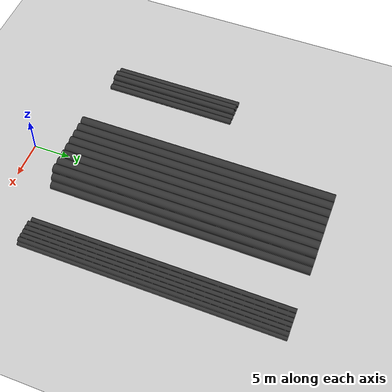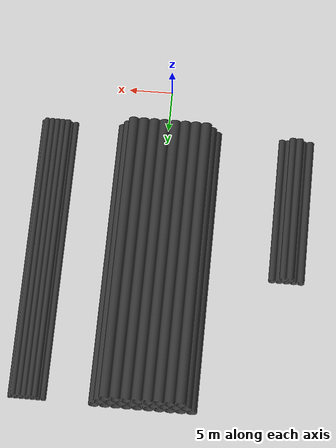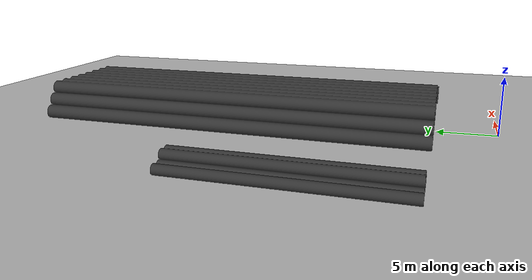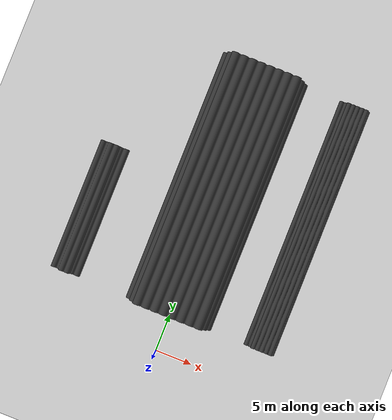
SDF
<sdf version="1.7">
 <world name="default">
  <light name="sun" type="directional">
   <pose>0 0 10 0 -0 0</pose>
   <diffuse>0.8 0.8 0.8 1</diffuse>
   <specular>0.2 0.2 0.2 1</specular>
   <attenuation>
    <range>1000</range>
    <constant>0.9</constant>
    <linear>0.01</linear>
    <quadratic>0.001</quadratic>
   </attenuation>
   <direction>-0.5 0.1 -0.9</direction>
   <spot><inner_angle>0</inner_angle><outer_angle>0</outer_angle><falloff>0</falloff></spot>
  </light>
  <model name="ground_plane">
   <static>1</static>
   <link name="link">
    <collision name="collision">
     <geometry><plane><normal>0 0 1</normal><size>100 100</size></plane></geometry>
     <surface>
      <contact><collide_bitmask>65535</collide_bitmask></contact>
      <friction><ode><mu>100</mu><mu2>50</mu2></ode></friction>
     </surface>
    </collision>
    <visual name="visual">
     <cast_shadows>0</cast_shadows>
     <geometry><plane><normal>0 0 1</normal><size>100 100</size></plane></geometry>
     <material>
      <script><uri>file://media/materials/scripts/gazebo.material</uri><name>Gazebo/Grey</name></script>
     </material>
    </visual>
   </link>
  </model>
  <gravity>0 0 -9.8</gravity>
  <magnetic_field>6e-06 2.3e-05 -4.2e-05</magnetic_field>
  <atmosphere type="adiabatic"/>
  <physics type="ode">
   <max_step_size>0.001</max_step_size>
   <real_time_factor>1</real_time_factor>
   <real_time_update_rate>1000</real_time_update_rate>
  </physics>
  <scene><ambient>0.4 0.4 0.4 1</ambient><background>0.7 0.7 0.7 1</background><shadows>1</shadows></scene>
  <spherical_coordinates>
   <surface_model>EARTH_WGS84</surface_model>
   <latitude_deg>0</latitude_deg>
   <longitude_deg>0</longitude_deg>
   <elevation>0</elevation>
   <heading_deg>0</heading_deg>
  </spherical_coordinates>
  <model name="48inch_pipe_stack">
   <static>1</static>
   <link name="pipe_stack">
    <visual name="visual">
     <geometry><mesh><uri>model://large_pipe_stack/meshes/48inch_pipe_stack.dae</uri></mesh></geometry>
    </visual>
    <collision name="collision">
     <geometry><mesh><uri>model://large_pipe_stack/meshes/48inch_pipe_stack.dae</uri></mesh></geometry>
    </collision>
   </link>
   <pose>0 22.535 0.6096 0 -0 0</pose>
  </model>
  <model name="24inch_pipe_stack">
   <static>1</static>
   <link name="pipe_stack">
    <visual name="visual">
     <geometry><mesh><uri>model://small_pipe_stack/meshes/24inch_pipe_stack.dae</uri></mesh></geometry>
    </visual>
    <collision name="collision">
     <geometry><mesh><uri>model://small_pipe_stack/meshes/24inch_pipe_stack.dae</uri></mesh></geometry>
    </collision>
   </link>
   <pose>12.5864 22.4011 0.31124 0 -0 0</pose>
  </model>
  <model name="36inch_pipe_stack">
   <static>1</static>
   <link name="pipe_stack">
    <visual name="visual">
     <geometry><mesh><uri>model://medium_pipe_stack/meshes/36inch_pipe_stack.dae</uri></mesh></geometry>
    </visual>
    <collision name="collision">
     <geometry><mesh><uri>model://medium_pipe_stack/meshes/36inch_pipe_stack.dae</uri></mesh></geometry>
    </collision>
   </link>
   <pose>-14.9557 14.3224 0.416207 0 -0 0</pose>
  </model>
 </world>
</sdf>
